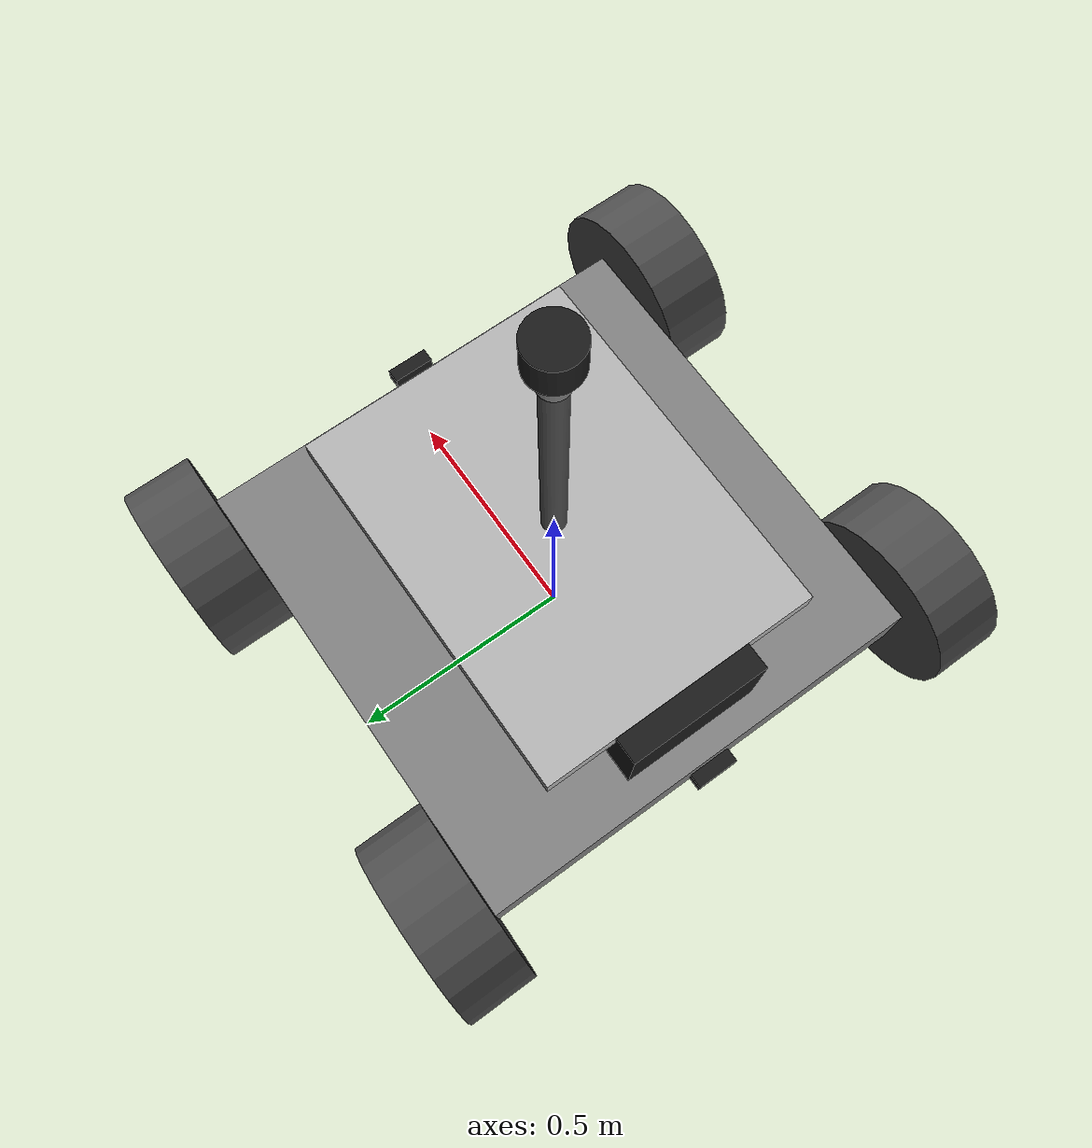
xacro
<?xml version="1.0"?>
<robot xmlns:xacro="http://www.ros.org/wiki/xacro" name="kolestel_robot">

  <!-- KOLESTEL 001 ROBOT      -->
  <!-- Mobile Robot for ROS2   -->

  <!-- Include all macro files -->
  <xacro:include filename="$(find kolestel_robot)/urdf/robot_properties.xacro"/>
  <xacro:include filename="$(find kolestel_robot)/urdf/inertia_macros.xacro"/>
  <xacro:include filename="$(find kolestel_robot)/urdf/wheel.xacro"/>
  <xacro:include filename="$(find kolestel_robot)/urdf/sensors.xacro"/>

  <!-- Arguments for conditional loading -->
  <xacro:arg name="use_sim" default="true"/>
  <xacro:arg name="use_ros2_control" default="true"/>
  <!-- If true, visual geometry is loaded from meshes/ (exported from Onshape). -->
  <xacro:arg name="use_meshes" default="false"/>

  <!-- BASE FOOTPRINT          -->

  <!-- Base footprint - ground projection -->
  <link name="base_footprint"/>

  <!-- BASE LINK (CHASSIS)     -->

  <link name="base_link">
    <visual>
      <origin xyz="0 0 0" rpy="0 0 0"/>
      <geometry>
        <xacro:if value="$(arg use_meshes)">
          <!-- Export from Onshape: COLLADA (.dae) recommended (keeps materials). -->
          <mesh filename="package://kolestel_robot/meshes/chassis_visual.dae" scale="1 1 1"/>
        </xacro:if>
        <xacro:unless value="$(arg use_meshes)">
          <box size="${chassis_length} ${chassis_width} ${chassis_height}"/>
        </xacro:unless>
      </geometry>
      <material name="gray"/>
    </visual>

    <collision>
      <origin xyz="0 0 0" rpy="0 0 0"/>
      <geometry>
        <box size="${chassis_length} ${chassis_width} ${chassis_height}"/>
      </geometry>
    </collision>

    <xacro:box_inertia m="${chassis_mass}" x="${chassis_length}" y="${chassis_width}" z="${chassis_height}"/>
  </link>

  <joint name="base_footprint_joint" type="fixed">
    <parent link="base_footprint"/>
    <child link="base_link"/>
    <origin xyz="0 0 ${wheel_radius}" rpy="0 0 0"/>
  </joint>

  <gazebo reference="base_link">
    <material>Gazebo/Grey</material>
    <mu1>0.2</mu1>
    <mu2>0.2</mu2>
  </gazebo>

  <!-- FRAME STRUCTURE         -->

  <!-- Front cross beam -->
  <link name="front_beam_link">
    <visual>
      <origin xyz="0 0 0" rpy="0 0 0"/>
      <geometry>
        <box size="0.05 ${chassis_width - 0.1} 0.05"/>
      </geometry>
      <material name="dark_gray"/>
    </visual>
    <xacro:box_inertia m="3.0" x="0.05" y="${chassis_width - 0.1}" z="0.05"/>
  </link>

  <joint name="front_beam_joint" type="fixed">
    <parent link="base_link"/>
    <child link="front_beam_link"/>
    <origin xyz="${chassis_length/2 - 0.1} 0 ${-chassis_height/2 + 0.025}" rpy="0 0 0"/>
  </joint>

  <!-- Rear cross beam -->
  <link name="rear_beam_link">
    <visual>
      <origin xyz="0 0 0" rpy="0 0 0"/>
      <geometry>
        <box size="0.05 ${chassis_width - 0.1} 0.05"/>
      </geometry>
      <material name="dark_gray"/>
    </visual>
    <xacro:box_inertia m="3.0" x="0.05" y="${chassis_width - 0.1}" z="0.05"/>
  </link>

  <joint name="rear_beam_joint" type="fixed">
    <parent link="base_link"/>
    <child link="rear_beam_link"/>
    <origin xyz="${-chassis_length/2 + 0.1} 0 ${-chassis_height/2 + 0.025}" rpy="0 0 0"/>
  </joint>

  <!-- EQUIPMENT PLATFORM      -->

  <link name="platform_link">
    <visual>
      <origin xyz="0 0 0" rpy="0 0 0"/>
      <geometry>
        <box size="${platform_length} ${platform_width} ${platform_height}"/>
      </geometry>
      <material name="light_gray"/>
    </visual>

    <collision>
      <origin xyz="0 0 0" rpy="0 0 0"/>
      <geometry>
        <box size="${platform_length} ${platform_width} ${platform_height}"/>
      </geometry>
    </collision>

    <xacro:box_inertia m="${platform_mass}" x="${platform_length}" y="${platform_width}" z="${platform_height}"/>
  </link>

  <joint name="platform_joint" type="fixed">
    <parent link="base_link"/>
    <child link="platform_link"/>
    <origin xyz="0 0 ${chassis_height/2 + platform_z_offset}" rpy="0 0 0"/>
  </joint>

  <gazebo reference="platform_link">
    <material>Gazebo/Grey</material>
  </gazebo>

  <!-- MAST (ANTENNA POLE)     -->

  <link name="mast_link">
    <visual>
      <origin xyz="0 0 ${mast_height/2}" rpy="0 0 0"/>
      <geometry>
        <cylinder radius="${mast_radius}" length="${mast_height}"/>
      </geometry>
      <material name="dark_gray"/>
    </visual>

    <collision>
      <origin xyz="0 0 ${mast_height/2}" rpy="0 0 0"/>
      <geometry>
        <cylinder radius="${mast_radius}" length="${mast_height}"/>
      </geometry>
    </collision>

    <xacro:cylinder_inertia m="${mast_mass}" r="${mast_radius}" h="${mast_height}"/>
  </link>

  <joint name="mast_joint" type="fixed">
    <parent link="platform_link"/>
    <child link="mast_link"/>
    <origin xyz="0 0 ${platform_height/2}" rpy="0 0 0"/>
  </joint>

  <gazebo reference="mast_link">
    <material>Gazebo/DarkGrey</material>
  </gazebo>

  <!-- BATTERY BOX             -->

  <link name="battery_link">
    <visual>
      <origin xyz="0 0 0" rpy="0 0 0"/>
      <geometry>
        <box size="${battery_length} ${battery_width} ${battery_height}"/>
      </geometry>
      <material name="black"/>
    </visual>

    <collision>
      <origin xyz="0 0 0" rpy="0 0 0"/>
      <geometry>
        <box size="${battery_length} ${battery_width} ${battery_height}"/>
      </geometry>
    </collision>

    <xacro:box_inertia m="${battery_mass}" x="${battery_length}" y="${battery_width}" z="${battery_height}"/>
  </link>

  <joint name="battery_joint" type="fixed">
    <parent link="base_link"/>
    <child link="battery_link"/>
    <origin xyz="${-chassis_length/4} 0 ${chassis_height/2 + battery_height/2 + 0.02}" rpy="0 0 0"/>
  </joint>

  <gazebo reference="battery_link">
    <material>Gazebo/Black</material>
  </gazebo>

  <!-- WHEELS                  -->

  <!-- Front Left Wheel -->
  <xacro:wheel prefix="front_left" parent="base_link"
               x_pos="${wheelbase/2}"
               y_pos="${wheel_track/2 + wheel_width/2}"/>

  <!-- Front Right Wheel -->
  <xacro:wheel prefix="front_right" parent="base_link"
               x_pos="${wheelbase/2}"
               y_pos="${-wheel_track/2 - wheel_width/2}"/>

  <!-- Rear Left Wheel -->
  <xacro:wheel prefix="rear_left" parent="base_link"
               x_pos="${-wheelbase/2}"
               y_pos="${wheel_track/2 + wheel_width/2}"/>

  <!-- Rear Right Wheel -->
  <xacro:wheel prefix="rear_right" parent="base_link"
               x_pos="${-wheelbase/2}"
               y_pos="${-wheel_track/2 - wheel_width/2}"/>

  <!-- SENSORS                 -->

  <!-- Lidar on top of mast -->
  <xacro:lidar_sensor parent="mast_link"
                      x_pos="0" y_pos="0" z_pos="${mast_height}"/>

  <!-- Front Camera -->
  <xacro:camera_sensor name="camera_front" parent="base_link"
                       x_pos="${chassis_length/2 + 0.02}" y_pos="0" z_pos="${chassis_height/2}"
                       roll="0" pitch="0" yaw="0"/>

  <!-- Rear Camera -->
  <xacro:camera_sensor name="camera_rear" parent="base_link"
                       x_pos="${-chassis_length/2 - 0.02}" y_pos="0" z_pos="${chassis_height/2}"
                       roll="0" pitch="0" yaw="${pi}"/>

  <!-- Line-follow camera (downward looking). Adjust x/z if needed for your line track. -->
  <xacro:camera_sensor name="line_camera" parent="base_link"
                       x_pos="${chassis_length/2 - 0.15}" y_pos="0" z_pos="0.12"
                       roll="0" pitch="0" yaw="0"/>

  <!-- IMU -->
  <xacro:imu_sensor parent="base_link"
                    x_pos="0" y_pos="0" z_pos="${chassis_height/2 + 0.01}"/>

  <!-- GPS on mast -->
  <xacro:gps_sensor parent="mast_link"
                    x_pos="0" y_pos="0" z_pos="${mast_height + 0.05}"/>

</robot>

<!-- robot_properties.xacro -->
<robot xmlns:xacro="http://www.ros.org/wiki/xacro">

  <!-- ROBOT PROPERTIES        -->
  <!-- Based on technical drawings: Kolestel 001 -->

  <!-- Physical Constants -->
  <xacro:property name="gravity" value="9.81"/>

  <!-- CHASSIS DIMENSIONS      -->

  <!-- Main chassis (base_link) -->
  <xacro:property name="chassis_length" value="1.024"/>      <!-- meters (from drawing: 1024mm) -->
  <xacro:property name="chassis_width" value="1.000"/>       <!-- meters (from drawing: 1000mm) -->
  <xacro:property name="chassis_height" value="0.150"/>      <!-- meters (estimated frame height) -->
  <xacro:property name="chassis_mass" value="100.0"/>        <!-- kg (main frame mass) -->

  <!-- Ground clearance -->
  <xacro:property name="ground_clearance" value="0.271"/>    <!-- meters (from drawing: 271mm) -->

  <!-- WHEEL DIMENSIONS        -->

  <xacro:property name="wheel_radius" value="0.200"/>        <!-- meters (diameter 400mm / 2) -->
  <xacro:property name="wheel_width" value="0.150"/>         <!-- meters (estimated tire width) -->
  <xacro:property name="wheel_mass" value="7.5"/>            <!-- kg per wheel -->

  <!-- Wheel positions -->
  <xacro:property name="wheelbase" value="0.889"/>           <!-- meters (from drawing: 889mm) -->
  <xacro:property name="wheel_track" value="1.000"/>         <!-- meters (track width: 1000mm) -->

  <!-- Aliases for compatibility with other xacro files -->
  <!-- (Some files refer to track_width instead of wheel_track) -->
  <xacro:property name="track_width" value="${wheel_track}"/>

  <!-- Wheel physics -->
  <xacro:property name="wheel_friction_mu1" value="1.0"/>
  <xacro:property name="wheel_friction_mu2" value="1.0"/>
  <xacro:property name="wheel_kp" value="1000000.0"/>
  <xacro:property name="wheel_kd" value="100.0"/>

  <!-- UPPER STRUCTURE         -->

  <!-- Equipment platform -->
  <xacro:property name="platform_length" value="0.800"/>
  <xacro:property name="platform_width" value="0.600"/>
  <xacro:property name="platform_height" value="0.050"/>
  <xacro:property name="platform_mass" value="15.0"/>
  <xacro:property name="platform_z_offset" value="0.200"/>   <!-- height above chassis -->

  <!-- Mast (antenna pole) -->
  <xacro:property name="mast_radius" value="0.025"/>
  <xacro:property name="mast_height" value="0.600"/>         <!-- from drawing: total height 1342mm -->
  <xacro:property name="mast_mass" value="3.0"/>

  <!-- Alias used by robot_gz.urdf.xacro -->
  <xacro:property name="antenna_height" value="${mast_height}"/>

  <!-- SENSOR DIMENSIONS       -->

  <!-- Lidar -->
  <xacro:property name="lidar_radius" value="0.050"/>
  <xacro:property name="lidar_height" value="0.070"/>
  <xacro:property name="lidar_mass" value="0.830"/>          <!-- typical 2D lidar mass -->
  <xacro:property name="lidar_x_offset" value="0.0"/>
  <xacro:property name="lidar_z_offset" value="0.300"/>      <!-- above platform -->

  <!-- Cameras -->
  <xacro:property name="camera_length" value="0.030"/>
  <xacro:property name="camera_width" value="0.090"/>
  <xacro:property name="camera_height" value="0.030"/>
  <xacro:property name="camera_mass" value="0.200"/>

  <!-- IMU -->
  <xacro:property name="imu_size" value="0.050"/>
  <xacro:property name="imu_mass" value="0.100"/>

  <!-- BATTERY BOX             -->

  <xacro:property name="battery_length" value="0.400"/>
  <xacro:property name="battery_width" value="0.300"/>
  <xacro:property name="battery_height" value="0.200"/>
  <xacro:property name="battery_mass" value="25.0"/>         <!-- typical battery pack -->

  <!-- CONTROL PARAMETERS      -->

  <!-- Skid-steer drive -->
  <xacro:property name="max_wheel_torque" value="100.0"/>    <!-- Nm -->
  <xacro:property name="max_wheel_acceleration" value="3.0"/> <!-- rad/s^2 -->
  <xacro:property name="max_linear_velocity" value="2.0"/>
  <xacro:property name="max_angular_velocity" value="1.5"/>  <!-- rad/s -->

  <!-- COLORS / MATERIALS      -->

  <material name="black">
    <color rgba="0.1 0.1 0.1 1.0"/>
  </material>

  <material name="dark_gray">
    <color rgba="0.3 0.3 0.3 1.0"/>
  </material>

  <material name="gray">
    <color rgba="0.5 0.5 0.5 1.0"/>
  </material>

  <material name="light_gray">
    <color rgba="0.7 0.7 0.7 1.0"/>
  </material>

  <material name="white">
    <color rgba="0.95 0.95 0.95 1.0"/>
  </material>

  <material name="red">
    <color rgba="0.8 0.0 0.0 1.0"/>
  </material>

  <material name="green">
    <color rgba="0.0 0.8 0.0 1.0"/>
  </material>

  <material name="blue">
    <color rgba="0.0 0.0 0.8 1.0"/>
  </material>

  <material name="yellow">
    <color rgba="0.9 0.9 0.0 1.0"/>
  </material>

  <material name="orange">
    <color rgba="1.0 0.5 0.0 1.0"/>
  </material>

</robot>

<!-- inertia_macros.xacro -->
<robot xmlns:xacro="http://www.ros.org/wiki/xacro">

  <!-- INERTIA MACROS          -->

  <!-- Macro for box inertia -->
  <xacro:macro name="box_inertia" params="m x y z">
    <inertial>
      <mass value="${m}"/>
      <inertia
        ixx="${(1/12) * m * (y*y + z*z)}" ixy="0.0" ixz="0.0"
        iyy="${(1/12) * m * (x*x + z*z)}" iyz="0.0"
        izz="${(1/12) * m * (x*x + y*y)}"/>
    </inertial>
  </xacro:macro>

  <!-- Macro for cylinder inertia (aligned with Z axis) -->
  <xacro:macro name="cylinder_inertia" params="m r h">
    <inertial>
      <mass value="${m}"/>
      <inertia
        ixx="${(1/12) * m * (3*r*r + h*h)}" ixy="0.0" ixz="0.0"
        iyy="${(1/12) * m * (3*r*r + h*h)}" iyz="0.0"
        izz="${(1/2) * m * r * r}"/>
    </inertial>
  </xacro:macro>

  <!-- Macro for cylinder inertia (aligned with Y axis - for wheels) -->
  <xacro:macro name="wheel_inertia" params="m r h">
    <inertial>
      <mass value="${m}"/>
      <inertia
        ixx="${(1/12) * m * (3*r*r + h*h)}" ixy="0.0" ixz="0.0"
        iyy="${(1/2) * m * r * r}" iyz="0.0"
        izz="${(1/12) * m * (3*r*r + h*h)}"/>
    </inertial>
  </xacro:macro>

  <!-- Macro for sphere inertia -->
  <xacro:macro name="sphere_inertia" params="m r">
    <inertial>
      <mass value="${m}"/>
      <inertia
        ixx="${(2/5) * m * r * r}" ixy="0.0" ixz="0.0"
        iyy="${(2/5) * m * r * r}" iyz="0.0"
        izz="${(2/5) * m * r * r}"/>
    </inertial>
  </xacro:macro>

  <!-- Macro for null inertia (for dummy links) -->
  <xacro:macro name="null_inertia">
    <inertial>
      <mass value="0.001"/>
      <inertia ixx="0.0001" ixy="0" ixz="0" iyy="0.0001" iyz="0" izz="0.0001"/>
    </inertial>
  </xacro:macro>

</robot>

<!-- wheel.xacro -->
<robot xmlns:xacro="http://www.ros.org/wiki/xacro">

  <!-- WHEEL MACRO             -->

  <xacro:macro name="wheel" params="prefix parent x_pos y_pos">

    <!-- Wheel Link -->
    <link name="${prefix}_wheel_link">
      <visual>
        <origin xyz="0 0 0" rpy="${pi/2} 0 0"/>
        <geometry>
          <cylinder radius="${wheel_radius}" length="${wheel_width}"/>
        </geometry>
        <material name="dark_gray"/>
      </visual>

      <collision>
        <origin xyz="0 0 0" rpy="${pi/2} 0 0"/>
        <geometry>
          <cylinder radius="${wheel_radius}" length="${wheel_width}"/>
        </geometry>
      </collision>

      <xacro:wheel_inertia m="${wheel_mass}" r="${wheel_radius}" h="${wheel_width}"/>
    </link>

    <!-- Wheel Joint -->
    <joint name="${prefix}_wheel_joint" type="continuous">
      <parent link="${parent}"/>
      <child link="${prefix}_wheel_link"/>
      <origin xyz="${x_pos} ${y_pos} 0" rpy="0 0 0"/>
      <axis xyz="0 1 0"/>
      <dynamics damping="0.1" friction="0.1"/>
      <limit effort="${max_wheel_torque}" velocity="20.0"/>
    </joint>

    <!-- Gazebo wheel properties -->
    <gazebo reference="${prefix}_wheel_link">
      <material>Gazebo/DarkGrey</material>
      <mu1>${wheel_friction_mu1}</mu1>
      <mu2>${wheel_friction_mu2}</mu2>
      <kp>${wheel_kp}</kp>
      <kd>${wheel_kd}</kd>
      <minDepth>0.001</minDepth>
      <maxVel>1.0</maxVel>
      <fdir1>1 0 0</fdir1>
    </gazebo>

    <!-- Transmission for ros2_control -->
    <transmission name="${prefix}_wheel_transmission">
      <type>transmission_interface/SimpleTransmission</type>
      <joint name="${prefix}_wheel_joint">
        <hardwareInterface>hardware_interface/VelocityJointInterface</hardwareInterface>
      </joint>
      <actuator name="${prefix}_wheel_motor">
        <hardwareInterface>hardware_interface/VelocityJointInterface</hardwareInterface>
        <mechanicalReduction>1</mechanicalReduction>
      </actuator>
    </transmission>

  </xacro:macro>

</robot>

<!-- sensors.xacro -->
<robot xmlns:xacro="http://www.ros.org/wiki/xacro">

  <!-- Sensor macros: geometry + frames only (Gazebo Sim sensors are configured in gz_plugins.xacro) -->

  <!-- LIDAR MACRO             -->
  <xacro:macro name="lidar_sensor" params="parent x_pos y_pos z_pos">

    <!-- Lidar Mount -->
    <link name="lidar_mount_link">
      <visual>
        <origin xyz="0 0 -0.02" rpy="0 0 0"/>
        <geometry>
          <cylinder radius="0.03" length="0.04"/>
        </geometry>
        <material name="gray"/>
      </visual>
      <xacro:cylinder_inertia m="0.1" r="0.03" h="0.04"/>
    </link>

    <joint name="lidar_mount_joint" type="fixed">
      <parent link="${parent}"/>
      <child link="lidar_mount_link"/>
      <origin xyz="${x_pos} ${y_pos} ${z_pos}" rpy="0 0 0"/>
    </joint>

    <!-- Lidar Link -->
    <link name="lidar_link">
      <visual>
        <origin xyz="0 0 0" rpy="0 0 0"/>
        <geometry>
          <cylinder radius="${lidar_radius}" length="${lidar_height}"/>
        </geometry>
        <material name="black"/>
      </visual>

      <collision>
        <origin xyz="0 0 0" rpy="0 0 0"/>
        <geometry>
          <cylinder radius="${lidar_radius}" length="${lidar_height}"/>
        </geometry>
      </collision>

      <xacro:cylinder_inertia m="${lidar_mass}" r="${lidar_radius}" h="${lidar_height}"/>
    </link>

    <joint name="lidar_joint" type="fixed">
      <parent link="lidar_mount_link"/>
      <child link="lidar_link"/>
      <origin xyz="0 0 ${lidar_height/2 + 0.02}" rpy="0 0 0"/>
    </joint>

  </xacro:macro>

  <!-- CAMERA MACRO            -->
  <xacro:macro name="camera_sensor" params="name parent x_pos y_pos z_pos roll pitch yaw">

    <link name="${name}_link">
      <visual>
        <origin xyz="0 0 0" rpy="0 0 0"/>
        <geometry>
          <box size="${camera_length} ${camera_width} ${camera_height}"/>
        </geometry>
        <material name="black"/>
      </visual>

      <collision>
        <origin xyz="0 0 0" rpy="0 0 0"/>
        <geometry>
          <box size="${camera_length} ${camera_width} ${camera_height}"/>
        </geometry>
      </collision>

      <xacro:box_inertia m="${camera_mass}" x="${camera_length}" y="${camera_width}" z="${camera_height}"/>
    </link>

    <joint name="${name}_joint" type="fixed">
      <parent link="${parent}"/>
      <child link="${name}_link"/>
      <origin xyz="${x_pos} ${y_pos} ${z_pos}" rpy="${roll} ${pitch} ${yaw}"/>
    </joint>

    <!-- ROS optical frame convention: Z forward, X right, Y down -->
    <link name="${name}_optical_link"/>
    <joint name="${name}_optical_joint" type="fixed">
      <parent link="${name}_link"/>
      <child link="${name}_optical_link"/>
      <origin xyz="0 0 0" rpy="${-pi/2} 0 ${-pi/2}"/>
    </joint>

  </xacro:macro>

  <!-- DEPTH CAMERA MACRO      -->
  <xacro:macro name="depth_camera_sensor" params="name parent x_pos y_pos z_pos roll pitch yaw">

    <link name="${name}_link">
      <visual>
        <origin xyz="0 0 0" rpy="0 0 0"/>
        <geometry>
          <box size="0.025 0.090 0.025"/>
        </geometry>
        <material name="black"/>
      </visual>

      <collision>
        <origin xyz="0 0 0" rpy="0 0 0"/>
        <geometry>
          <box size="0.025 0.090 0.025"/>
        </geometry>
      </collision>

      <xacro:box_inertia m="0.072" x="0.025" y="0.090" z="0.025"/>
    </link>

    <joint name="${name}_joint" type="fixed">
      <parent link="${parent}"/>
      <child link="${name}_link"/>
      <origin xyz="${x_pos} ${y_pos} ${z_pos}" rpy="${roll} ${pitch} ${yaw}"/>
    </joint>

    <link name="${name}_optical_link"/>
    <joint name="${name}_optical_joint" type="fixed">
      <parent link="${name}_link"/>
      <child link="${name}_optical_link"/>
      <origin xyz="0 0 0" rpy="${-pi/2} 0 ${-pi/2}"/>
    </joint>

  </xacro:macro>

  <!-- IMU MACRO               -->
  <xacro:macro name="imu_sensor" params="parent x_pos y_pos z_pos">

    <link name="imu_link">
      <visual>
        <origin xyz="0 0 0" rpy="0 0 0"/>
        <geometry>
          <box size="${imu_size} ${imu_size} 0.015"/>
        </geometry>
        <material name="green"/>
      </visual>

      <collision>
        <origin xyz="0 0 0" rpy="0 0 0"/>
        <geometry>
          <box size="${imu_size} ${imu_size} 0.015"/>
        </geometry>
      </collision>

      <xacro:box_inertia m="${imu_mass}" x="${imu_size}" y="${imu_size}" z="0.015"/>
    </link>

    <joint name="imu_joint" type="fixed">
      <parent link="${parent}"/>
      <child link="imu_link"/>
      <origin xyz="${x_pos} ${y_pos} ${z_pos}" rpy="0 0 0"/>
    </joint>

  </xacro:macro>

  <!-- GPS MACRO               -->
  <xacro:macro name="gps_sensor" params="parent x_pos y_pos z_pos">

    <link name="gps_link">
      <visual>
        <origin xyz="0 0 0" rpy="0 0 0"/>
        <geometry>
          <cylinder radius="0.03" length="0.02"/>
        </geometry>
        <material name="white"/>
      </visual>

      <xacro:cylinder_inertia m="0.05" r="0.03" h="0.02"/>
    </link>

    <joint name="gps_joint" type="fixed">
      <parent link="${parent}"/>
      <child link="gps_link"/>
      <origin xyz="${x_pos} ${y_pos} ${z_pos}" rpy="0 0 0"/>
    </joint>

  </xacro:macro>

</robot>
